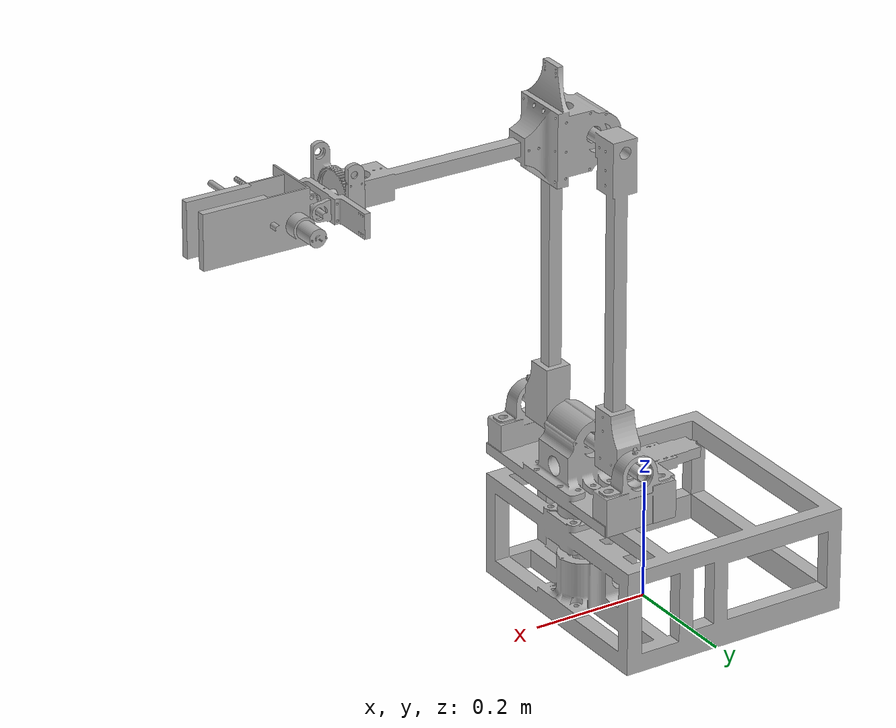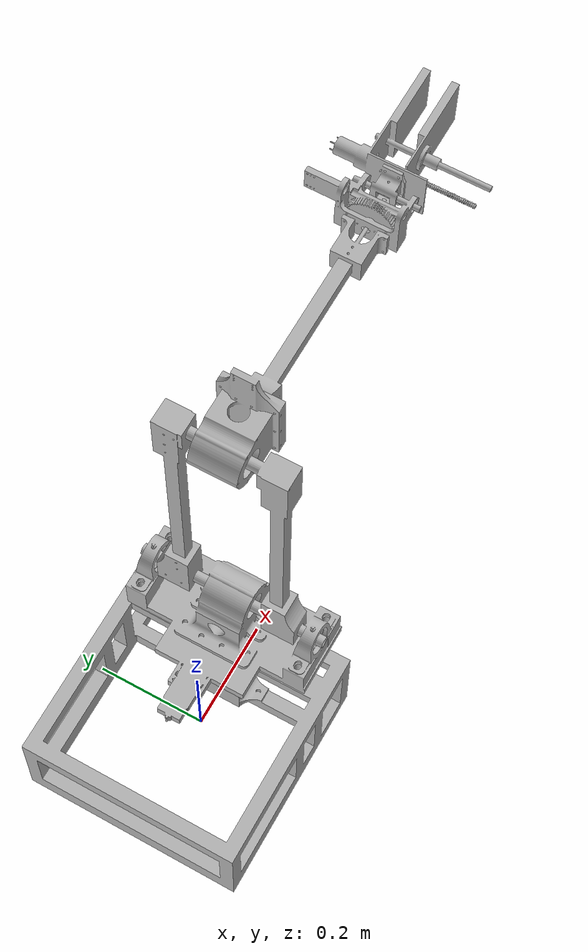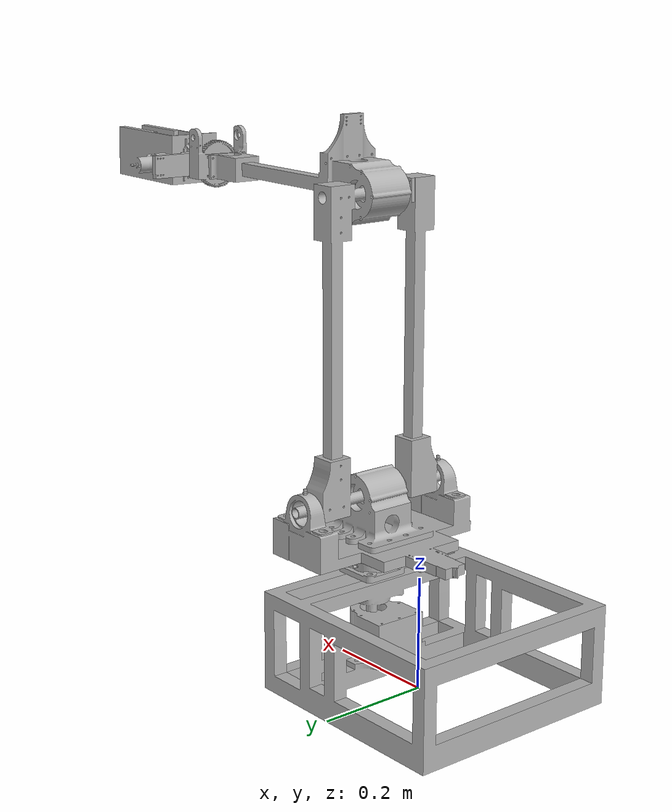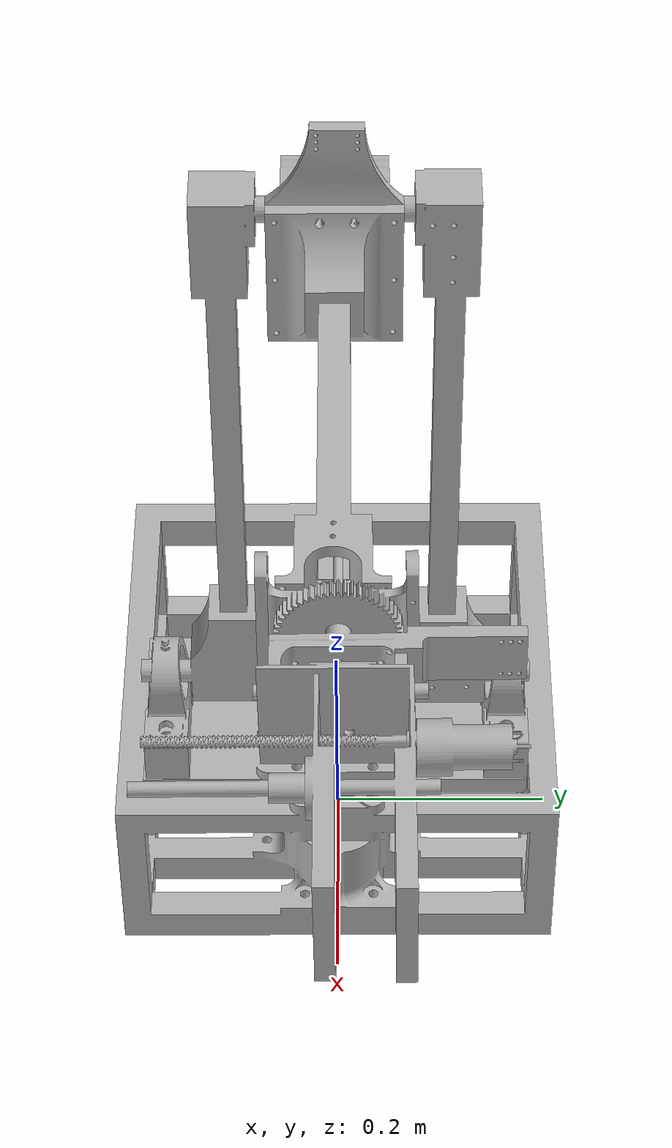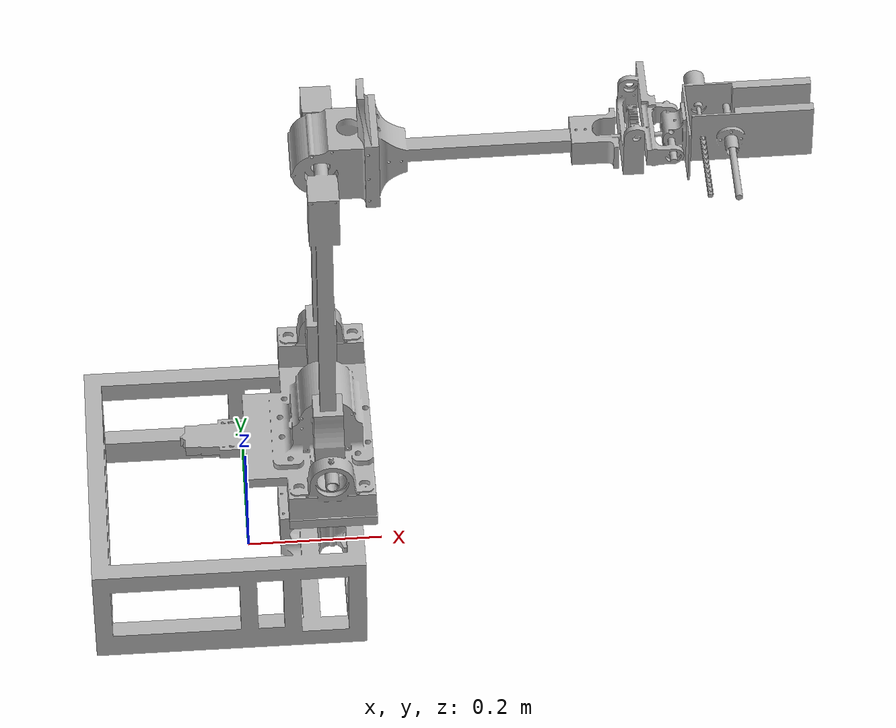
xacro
<?xml version="1.0"?>
<robot xmlns:xacro="http://www.ros.org/wiki/xacro" name="isroarm">
    <xacro:arg name="initial_positions_file" default="initial_positions.yaml" />

    <!-- Import isroarm urdf file -->
    <xacro:include filename="$(find isroarm_description)/urdf/isroarm.xacro" />

    <!-- Import control_xacro -->
    <xacro:include filename="isroarm.ros2_control.xacro" />

    <xacro:isroarm_ros2_control name="FakeSystem" initial_positions_file="$(arg initial_positions_file)"/>

</robot>

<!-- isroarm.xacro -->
<robot name="isroarm" xmlns:xacro="http://www.ros.org/wiki/xacro">

<xacro:include filename="$(find isroarm_description)/urdf/materials.xacro" />
<xacro:include filename="$(find isroarm_description)/urdf/isroarm.trans" />
<xacro:include filename="$(find isroarm_description)/urdf/isroarm.gazebo" />
<link name="base_link">
  <inertial>
    <origin xyz="-0.006223035523270263 0.0002504182034910796 0.08547439505557328" rpy="0 0 0"/>
    <mass value="34.39674031575615"/>
    <inertia ixx="0.846383" iyy="0.8519" izz="1.40519" ixy="0.000683" iyz="-9.6e-05" ixz="-0.013757"/>
  </inertial>
  <visual>
    <origin xyz="0 0 0" rpy="0 0 0"/>
    <geometry>
      <mesh filename="file://$(find isroarm_description)/meshes/base_link.stl" scale="0.001 0.001 0.001"/>
    </geometry>
    <material name="silver"/>
  </visual>
  <collision>
    <origin xyz="0 0 0" rpy="0 0 0"/>
    <geometry>
      <mesh filename="file://$(find isroarm_description)/meshes/base_link.stl" scale="0.001 0.001 0.001"/>
    </geometry>
  </collision>
</link>

<link name="limb2_1">
  <inertial>
    <origin xyz="-0.0010583101465876932 0.027332460893030076 0.24659669730045924" rpy="0 0 0"/>
    <mass value="9.727222371945627"/>
    <inertia ixx="0.475806" iyy="0.397211" izz="0.080891" ixy="-3e-06" iyz="0.002402" ixz="-8e-06"/>
  </inertial>
  <visual>
    <origin xyz="-0.120545 0.025652 -0.319189" rpy="0 0 0"/>
    <geometry>
      <mesh filename="file://$(find isroarm_description)/meshes/limb2_1.stl" scale="0.001 0.001 0.001"/>
    </geometry>
    <material name="silver"/>
  </visual>
  <collision>
    <origin xyz="-0.120545 0.025652 -0.319189" rpy="0 0 0"/>
    <geometry>
      <mesh filename="file://$(find isroarm_description)/meshes/limb2_1.stl" scale="0.001 0.001 0.001"/>
    </geometry>
  </collision>
</link>

<link name="limb3_1">
  <inertial>
    <origin xyz="0.09312517589687319 0.05857578303732136 0.0036645101411612035" rpy="0 0 0"/>
    <mass value="6.4774993512068155"/>
    <inertia ixx="0.011715" iyy="0.090775" izz="0.087272" ixy="-5.6e-05" iyz="-4.6e-05" ixz="0.000519"/>
  </inertial>
  <visual>
    <origin xyz="-0.119445 0.056552 -0.833533" rpy="0 0 0"/>
    <geometry>
      <mesh filename="file://$(find isroarm_description)/meshes/limb3_1.stl" scale="0.001 0.001 0.001"/>
    </geometry>
    <material name="silver"/>
  </visual>
  <collision>
    <origin xyz="-0.119445 0.056552 -0.833533" rpy="0 0 0"/>
    <geometry>
      <mesh filename="file://$(find isroarm_description)/meshes/limb3_1.stl" scale="0.001 0.001 0.001"/>
    </geometry>
  </collision>
</link>

<link name="limb4_1">
  <inertial>
    <origin xyz="-0.030623225094261186 0.01328740661062281 0.003764742683460165" rpy="0 0 0"/>
    <mass value="1.462466051492862"/>
    <inertia ixx="0.003369" iyy="0.001" izz="0.003487" ixy="-0.000232" iyz="4e-05" ixz="6.6e-05"/>
  </inertial>
  <visual>
    <origin xyz="-0.599877 -0.007098 -0.835025" rpy="0 0 0"/>
    <geometry>
      <mesh filename="file://$(find isroarm_description)/meshes/limb4_1.stl" scale="0.001 0.001 0.001"/>
    </geometry>
    <material name="silver"/>
  </visual>
  <collision>
    <origin xyz="-0.599877 -0.007098 -0.835025" rpy="0 0 0"/>
    <geometry>
      <mesh filename="file://$(find isroarm_description)/meshes/limb4_1.stl" scale="0.001 0.001 0.001"/>
    </geometry>
  </collision>
</link>

<link name="limb5_1">
  <inertial>
    <origin xyz="0.09993112071423671 0.029429865518363095 0.00037554982914056456" rpy="0 0 0"/>
    <mass value="0.2954171108490884"/>
    <inertia ixx="0.000547" iyy="0.001224" izz="0.001484" ixy="-0.000139" iyz="9e-06" ixz="-3.4e-05"/>
  </inertial>
  <visual>
    <origin xyz="-0.59765 -0.00911 -0.83644" rpy="0 0 0"/>
    <geometry>
      <mesh filename="file://$(find isroarm_description)/meshes/limb5_1.stl" scale="0.001 0.001 0.001"/>
    </geometry>
    <material name="silver"/>
  </visual>
  <collision>
    <origin xyz="-0.59765 -0.00911 -0.83644" rpy="0 0 0"/>
    <geometry>
      <mesh filename="file://$(find isroarm_description)/meshes/limb5_1.stl" scale="0.001 0.001 0.001"/>
    </geometry>
  </collision>
</link>

<link name="limb6_1">
  <inertial>
    <origin xyz="0.04909576354112366 0.0339011096498328 0.000673574815664213" rpy="0 0 0"/>
    <mass value="1.1785854860286602"/>
    <inertia ixx="0.0008" iyy="0.002757" izz="0.002011" ixy="-7.7e-05" iyz="7e-06" ixz="-1.3e-05"/>
  </inertial>
  <visual>
    <origin xyz="-0.69365 0.037515 -0.837685" rpy="0 0 0"/>
    <geometry>
      <mesh filename="file://$(find isroarm_description)/meshes/limb6_1.stl" scale="0.001 0.001 0.001"/>
    </geometry>
    <material name="silver"/>
  </visual>
  <collision>
    <origin xyz="-0.69365 0.037515 -0.837685" rpy="0 0 0"/>
    <geometry>
      <mesh filename="file://$(find isroarm_description)/meshes/limb6_1.stl" scale="0.001 0.001 0.001"/>
    </geometry>
  </collision>
</link>

<link name="limb1_1">
  <inertial>
    <origin xyz="-0.01638798223083897 -0.0008646361197985808 0.028718199102967357" rpy="0 0 0"/>
    <mass value="16.43447240161675"/>
    <inertia ixx="0.161532" iyy="0.058708" izz="0.190372" ixy="6.8e-05" iyz="-0.000181" ixz="-0.004139"/>
  </inertial>
  <visual>
    <origin xyz="-0.122962 -0.000501 -0.229333" rpy="0 0 0"/>
    <geometry>
      <mesh filename="file://$(find isroarm_description)/meshes/limb1_1.stl" scale="0.001 0.001 0.001"/>
    </geometry>
    <material name="silver"/>
  </visual>
  <collision>
    <origin xyz="-0.122962 -0.000501 -0.229333" rpy="0 0 0"/>
    <geometry>
      <mesh filename="file://$(find isroarm_description)/meshes/limb1_1.stl" scale="0.001 0.001 0.001"/>
    </geometry>
  </collision>
</link>

<joint name="Revolute 13" type="continuous">
  <origin xyz="-0.002417 -0.026153 0.089856" rpy="0 0 0"/>
  <parent link="limb1_1"/>
  <child link="limb2_1"/>
  <axis xyz="-0.0 1.0 0.0"/>
</joint>

<joint name="Revolute 14" type="continuous">
  <origin xyz="-0.0011 -0.0309 0.514344" rpy="0 0 0"/>
  <parent link="limb2_1"/>
  <child link="limb3_1"/>
  <axis xyz="0.0 -1.0 0.0"/>
</joint>

<joint name="Revolute 15" type="continuous">
  <origin xyz="0.480432 0.06365 0.001492" rpy="0 0 0"/>
  <parent link="limb3_1"/>
  <child link="limb4_1"/>
  <axis xyz="0.999949 0.0 0.010127"/>
</joint>

<joint name="Revolute 16" type="continuous">
  <origin xyz="-0.002227 0.002012 0.001415" rpy="0 0 0"/>
  <parent link="limb4_1"/>
  <child link="limb5_1"/>
  <axis xyz="-0.000103 0.999949 0.010126"/>
</joint>

<joint name="Slider 17" type="prismatic">
  <origin xyz="0.096 -0.046625 0.001245" rpy="0 0 0"/>
  <parent link="limb5_1"/>
  <child link="limb6_1"/>
  <axis xyz="0.000103 -0.999949 -0.010126"/>
  <limit upper="0.08" lower="0.0" effort="100" velocity="100"/>
</joint>

<joint name="Revolute 19" type="continuous">
  <origin xyz="0.122962 0.000501 0.229333" rpy="0 0 0"/>
  <parent link="base_link"/>
  <child link="limb1_1"/>
  <axis xyz="-0.0 0.0 1.0"/>
</joint>

</robot>

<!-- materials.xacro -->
<robot name="isroarm" xmlns:xacro="http://www.ros.org/wiki/xacro" >

<material name="silver">
  <color rgba="0.700 0.700 0.700 1.000"/>
</material>

</robot>

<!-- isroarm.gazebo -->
<robot name="isroarm" xmlns:xacro="http://www.ros.org/wiki/xacro" >

<xacro:property name="body_color" value="Gazebo/Silver" />

<gazebo>
  <plugin name="control" filename="libgazebo_ros_control.so"/>
</gazebo>
<gazebo reference="base_link">
  <material>${body_color}</material>
  <mu1>0.2</mu1>
  <mu2>0.2</mu2>
  <self_collide>true</self_collide>
  <gravity>true</gravity>
</gazebo>

<gazebo reference="limb2_1">
  <material>${body_color}</material>
  <mu1>0.2</mu1>
  <mu2>0.2</mu2>
  <self_collide>true</self_collide>
</gazebo>

<gazebo reference="limb3_1">
  <material>${body_color}</material>
  <mu1>0.2</mu1>
  <mu2>0.2</mu2>
  <self_collide>true</self_collide>
</gazebo>

<gazebo reference="limb4_1">
  <material>${body_color}</material>
  <mu1>0.2</mu1>
  <mu2>0.2</mu2>
  <self_collide>true</self_collide>
</gazebo>

<gazebo reference="limb5_1">
  <material>${body_color}</material>
  <mu1>0.2</mu1>
  <mu2>0.2</mu2>
  <self_collide>true</self_collide>
</gazebo>

<gazebo reference="limb6_1">
  <material>${body_color}</material>
  <mu1>0.2</mu1>
  <mu2>0.2</mu2>
  <self_collide>true</self_collide>
</gazebo>

<gazebo reference="limb1_1">
  <material>${body_color}</material>
  <mu1>0.2</mu1>
  <mu2>0.2</mu2>
  <self_collide>true</self_collide>
</gazebo>

</robot>
